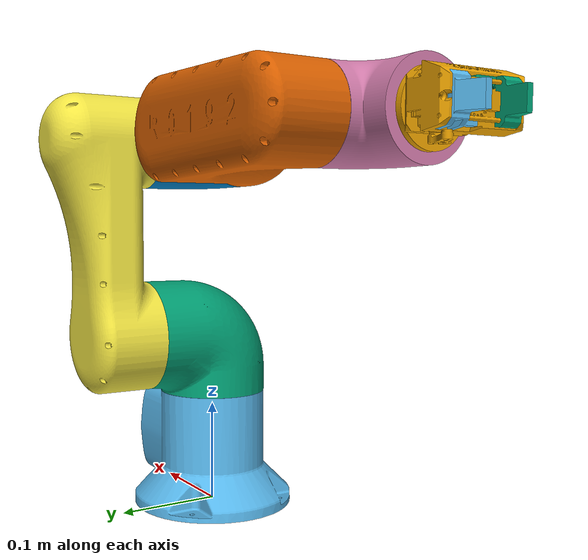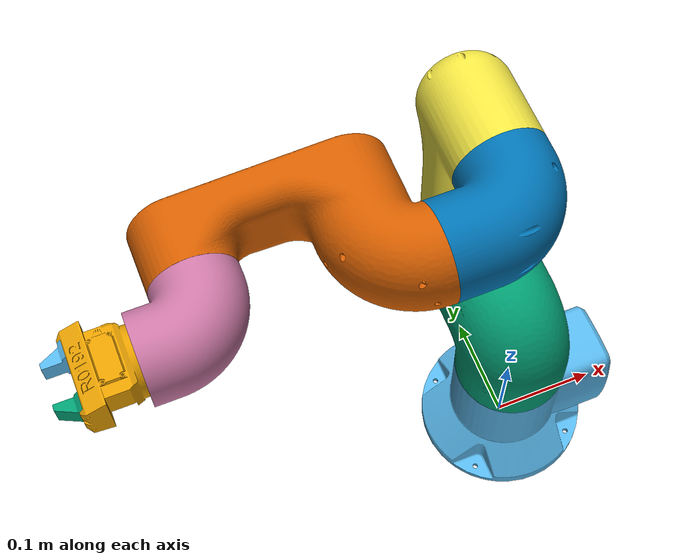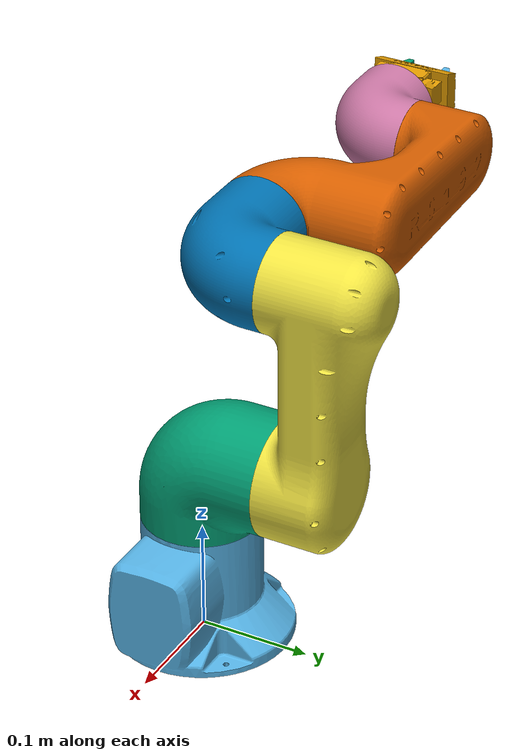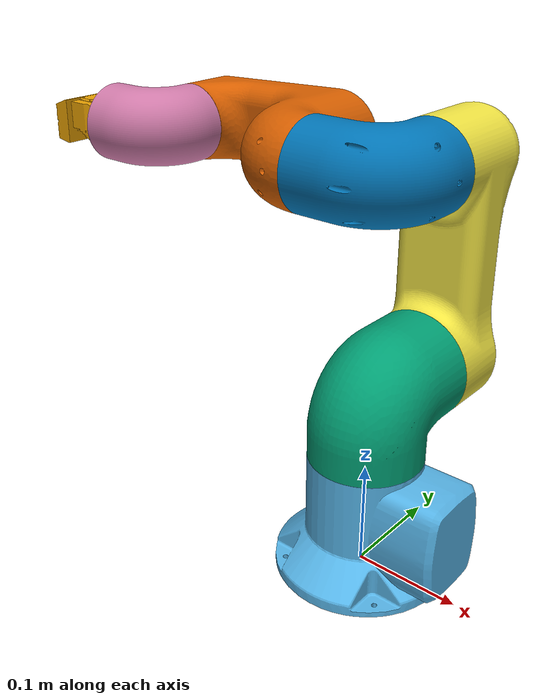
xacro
<?xml version="1.0"?>
<robot xmlns:xacro="http://www.ros.org/wiki/xacro" name="r0192">

    <!-- Start GZ or Ignition depending on ROS 2 Version -->
    <xacro:arg name="is_ignition" default="true" />

    <!-- Load Simulated or Real Hardware Interfaces -->
    <xacro:arg name="is_sim" default="true" />

    <!-- Include Gazebo Parameters -->
    <xacro:include filename="$(find r0192_description)/urdf/r0192_gazebo.xacro" />

    <!-- Include ros2_control Plugins -->
    <xacro:include filename="$(find r0192_description)/urdf/r0192_ros2_control.xacro" />

    <!-- Useful XACRO Variables (Properties) -->
    <xacro:property name="PI" value="3.14159265359" />
    <xacro:property name="effort" value="30.0" />        <!-- später noch mit echten Werten anpassen! -->
    <xacro:property name="velocity" value="10.0" />      <!-- später noch mit echten Werten anpassen! -->
    <!-- STL meshes are exported in mm → 0.001 maps them to metres (1:1 real
         size). Joint origins below are likewise in metres at real scale. -->
    <xacro:property name="mesh_scale" value="0.001 0.001 0.001" />

    <!-- Useful Macros -->
    <xacro:macro name="default_inertial" params="mass">
        <inertial>
            <origin xyz="0 0 0" rpy="0 0 0" />
            <mass value="${mass}" />
            <inertia ixx="1.0" ixy="0.0" ixz="0.0"
                iyy="1.0" iyz="0.0"
                izz="1.0" />
        </inertial>
    </xacro:macro>

    <!-- Links -->
    <link name="world" />

    <link name="base_link">
        <xacro:default_inertial mass="1.0" />
        <visual>
            <origin rpy="${PI / 2} 0 0" xyz="0 0 0" />
            <geometry>
                <mesh filename="package://r0192_description/meshes/visual/axis_1.stl"
                    scale="${mesh_scale}" />
            </geometry>
        </visual>
        <collision>
            <origin rpy="${PI / 2} 0 0" xyz="0 0 0" />
            <geometry>
                <mesh filename="package://r0192_description/meshes/collision/axis_1_collision.stl"
                    scale="${mesh_scale}" />
            </geometry>
        </collision>
    </link>

    <link name="link_1">
        <xacro:default_inertial mass="1.0" />
        <visual>
            <origin rpy="0 ${PI / 2} ${PI / 2}" xyz="0 0 0" />
            <geometry>
                <mesh filename="package://r0192_description/meshes/visual/axis_2.stl"
                    scale="${mesh_scale}" />
            </geometry>
        </visual>
        <collision>
            <origin rpy="0 ${PI / 2} ${PI / 2}" xyz="0 0 0" />
            <geometry>
                <mesh filename="package://r0192_description/meshes/collision/axis_2_collision.stl"
                    scale="${mesh_scale}" />
            </geometry>
        </collision>
    </link>

    <link name="link_2">
        <xacro:default_inertial mass="1.0" />
        <visual>
            <origin rpy="0 ${PI}  ${PI}" xyz="0 0 0" />
            <geometry>
                <mesh filename="package://r0192_description/meshes/visual/axis_3.stl"
                    scale="${mesh_scale}" />
            </geometry>
        </visual>
        <collision>
            <origin rpy="0 ${PI}  ${PI}" xyz="0 0 0" />
            <geometry>
                <mesh filename="package://r0192_description/meshes/collision/axis_3_collision.stl"
                    scale="${mesh_scale}" />
            </geometry>
        </collision>
    </link>

    <link name="link_3">
        <xacro:default_inertial mass="1.0" />
        <visual>
            <origin rpy="-${PI / 2} ${PI} 0" xyz="0 0 0" />
            <geometry>
                <mesh filename="package://r0192_description/meshes/visual/axis_4.stl"
                    scale="${mesh_scale}" />
            </geometry>
        </visual>
        <collision>
            <origin rpy="-${PI / 2} ${PI} 0" xyz="0 0 0" />
            <geometry>
                <mesh filename="package://r0192_description/meshes/collision/axis_4_collision.stl"
                    scale="${mesh_scale}" />
            </geometry>
        </collision>
    </link>

    <link name="link_4">
        <xacro:default_inertial mass="1.0" />
        <visual>
            <origin rpy="${PI / 2} 0 ${PI / 2}" xyz="0 0 0" />
            <geometry>
                <mesh filename="package://r0192_description/meshes/visual/axis_5.stl"
                    scale="${mesh_scale}" />
            </geometry>
        </visual>
        <collision>
            <origin rpy="${PI / 2} 0 ${PI / 2}" xyz="0 0 0" />
            <geometry>
                <mesh filename="package://r0192_description/meshes/collision/axis_5_collision.stl"
                    scale="${mesh_scale}" />
            </geometry>
        </collision>
    </link>

    <link name="link_5">
        <xacro:default_inertial mass="1.0" />
        <visual>
            <origin rpy="-${PI / 2} ${PI} 0" xyz="0 0 0" />
            <geometry>
                <mesh filename="package://r0192_description/meshes/visual/axis_6.stl"
                    scale="${mesh_scale}" />
            </geometry>
        </visual>
        <collision>
            <origin rpy="-${PI / 2} ${PI} 0" xyz="0 0 0" />
            <geometry>
                <mesh filename="package://r0192_description/meshes/collision/axis_6_collision.stl"
                    scale="${mesh_scale}" />
            </geometry>
        </collision>
    </link>

    <link name="link_6">
        <xacro:default_inertial mass="1.0" />
        <visual>
            <origin rpy="-${PI / 2} ${PI} 0" xyz="0 0 0" />
            <geometry>
                <mesh filename="package://r0192_description/meshes/visual/flansch.stl"
                    scale="${mesh_scale}" />
            </geometry>
        </visual>
        <collision>
            <origin rpy="-${PI / 2} ${PI} 0" xyz="0 0 0" />
            <geometry>
                <mesh filename="package://r0192_description/meshes/collision/flansch_collision.stl"
                    scale="${mesh_scale}" />
            </geometry>
        </collision>
    </link>

     <!-- Links - Gripper-->
    <link name="gripper_base">
        <xacro:default_inertial mass="1.0"/>
        <visual>
            <origin rpy="0 ${PI} ${PI / 2}" xyz="0 0 0"/>
            <geometry>
                <mesh filename="package://r0192_description/meshes/gripper/gripper_base.stl" scale="${mesh_scale}"/>
            </geometry>
        </visual>
        <collision>
            <origin rpy="0 ${PI} ${PI / 2}" xyz="0 0 0"/>
            <geometry>
                <mesh filename="package://r0192_description/meshes/gripper/gripper_base.stl" scale="${mesh_scale}"/>
            </geometry>
        </collision>
    </link>

    <link name="gripper_right">
        <xacro:default_inertial mass="0.01"/>
        <visual>
            <origin rpy="0 ${PI} ${PI / 2}" xyz="0 0 0"/>
            <geometry>
                <mesh filename="package://r0192_description/meshes/gripper/gripper_right.stl" scale="${mesh_scale}"/>
            </geometry>
        </visual>
        <collision>
            <origin rpy="0 ${PI} ${PI / 2}" xyz="0 0 0"/>
            <geometry>
                <mesh filename="package://r0192_description/meshes/gripper/gripper_right.stl" scale="${mesh_scale}"/>
            </geometry>
        </collision>
    </link>

    <link name="gripper_left">
        <xacro:default_inertial mass="0.01"/>
        <visual>
            <origin rpy="0 ${PI} ${PI / 2}" xyz="0 0 0"/>
            <geometry>
                <mesh filename="package://r0192_description/meshes/gripper/gripper_left.stl" scale="${mesh_scale}"/>
            </geometry>
        </visual>
        <collision>
            <origin rpy="0 ${PI} ${PI / 2}" xyz="0 0 0"/>
            <geometry>
                <mesh filename="package://r0192_description/meshes/gripper/gripper_left.stl" scale="${mesh_scale}"/>
            </geometry>
        </collision>
    </link>

    <!-- Joints -->
    <joint name="virtual_joint" type="fixed">
        <parent link="world" />
        <child link="base_link" />
        <origin xyz="0 0 0" rpy="0 0 0" />
    </joint>

    <joint name="joint_1" type="revolute">
        <parent link="base_link" />
        <child link="link_1" />
        <origin xyz="0 0 0.1751" />
        <!-- -Z: motor's positive rotation is opposite the model's default +Z,
             so the RViz model turns the same way as the physical axis 1. -->
        <axis xyz="0 0 -1" />
        <limit lower="-${PI}" upper="${PI}"
            effort="${effort}" velocity="${velocity}" />
    </joint>

    <joint name="joint_2" type="revolute">
        <parent link="link_1" />
        <child link="link_2" />
        <origin xyz="0 0.14 0" />
        <axis xyz="0 1 0" />
        <limit lower="-${PI / 2}" upper="${PI / 2}"
            effort="${effort}" velocity="${velocity}" />
    </joint>

    <joint name="joint_3" type="revolute">
        <parent link="link_2" />
        <child link="link_3" />
        <origin xyz="0 -0.1252 0.185" />
        <axis xyz="0 1 0" />
        <limit lower="-${PI / 4}" upper="${5 * PI / 4}"
            effort="${effort}" velocity="${velocity}" />
    </joint>

    <joint name="joint_4" type="revolute">
        <parent link="link_3" />
        <child link="link_4" />
        <origin xyz="-0.125 0 0" />
        <axis xyz="1 0 0" />
        <limit lower="-${PI}" upper="${PI}"
            effort="${effort}" velocity="${velocity}" />
    </joint>

    <joint name="joint_5" type="revolute">
        <parent link="link_4" />
        <child link="link_5" />
        <origin xyz="-0.14 0 0" />
        <axis xyz="0 1 0" />
        <limit lower="-${PI}" upper="${PI}"
            effort="${effort}" velocity="${velocity}" />
    </joint>

    <joint name="joint_6" type="revolute">
        <parent link="link_5" />
        <child link="link_6" />
        <origin xyz="0 0 0" />
        <axis xyz="1 0 0" />
        <limit lower="-${PI}" upper="${PI}"
            effort="${effort}" velocity="${velocity}" />
    </joint>

    <!-- Joints - Gripper-->
    <joint name ="horizontal_arm_to_claw_support" type="fixed">
        <parent link="link_6"/>
        <child link = "gripper_base"/>
        <origin xyz="-0.119143 0 0.012234"/>
    </joint>

    <joint name ="joint_7" type="prismatic">
        <parent link="gripper_base"/>
        <child link = "gripper_right"/>
        <origin xyz="0 0 0"/>
        <axis xyz="0 1 0"/>
        <limit lower="0.0" upper="0.0025"
               effort="${effort}" velocity="${velocity}"/>
    </joint>

    <joint name ="joint_8" type="prismatic">
        <parent link="gripper_base"/>
        <child link = "gripper_left"/>
        <origin xyz="0 0 0"/>
        <axis xyz="0 1 0"/>
        <limit lower="-0.0025" upper="0.0"
               effort="${effort}" velocity="${velocity}"/>
        <mimic joint="joint_7" multiplier="-1"/>
    </joint>

    <link name="tcp"/>
    <joint name="gripper_base_to_tcp" type="fixed">
        <parent link="gripper_base"/>
        <child link="tcp"/>
        <origin xyz="0 0 0" rpy="0 ${PI / 2} 0"/>
    </joint>
</robot>
